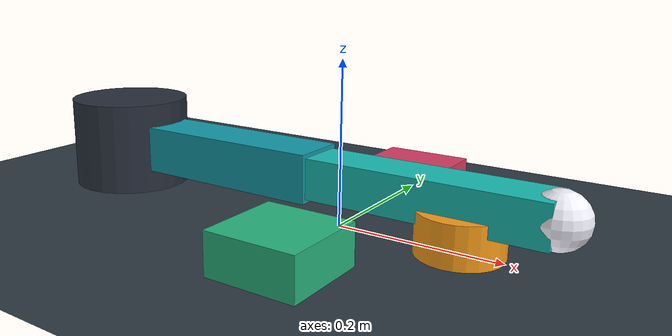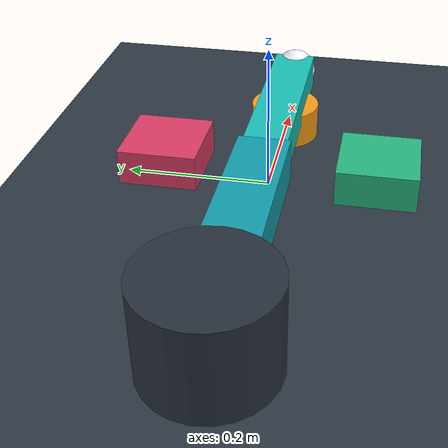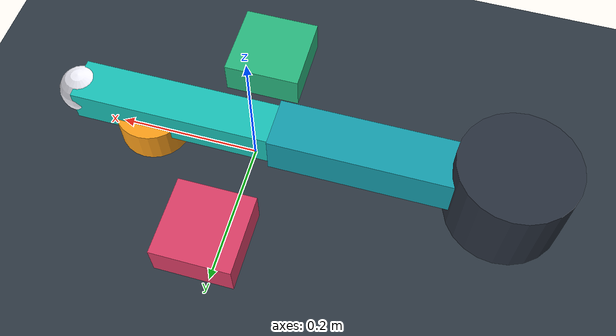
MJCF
<mujoco model="quality_inspection">
  <compiler angle="radian" autolimits="true"/>
  <option timestep="0.005" gravity="0 0 -9.81" integrator="implicitfast" solver="Newton" iterations="16" cone="pyramidal"/>
  <size njmax="96" nconmax="24"/>

  <default>
    <joint damping="1.2" armature="0.02" limited="true"/>
    <geom friction="0.9 0.01 0.0001" condim="3" contype="1" conaffinity="1"/>
    <motor ctrllimited="true" ctrlrange="-8 8"/>
  </default>

  <worldbody>
    <light name="key" pos="0 0 2" dir="0 0 -1"/>
    <geom name="inspection_table" type="plane" size="1.2 0.8 0.05" rgba="0.18 0.22 0.26 1"/>
    <geom name="station_a" type="box" pos="0.02 -0.15 0.025" size="0.055 0.055 0.025" rgba="0.16 0.72 0.50 1" contype="0" conaffinity="0"/>
    <geom name="station_b" type="cylinder" pos="0.15 0 0.025" size="0.050 0.025" rgba="0.98 0.62 0.10 1" contype="0" conaffinity="0"/>
    <geom name="station_c" type="box" pos="0.02 0.15 0.025" size="0.055 0.055 0.025" rgba="0.86 0.24 0.40 1" contype="0" conaffinity="0"/>

    <body name="base" pos="-0.35 0 0.06">
      <geom name="base_geom" type="cylinder" size="0.08 0.06" rgba="0.16 0.19 0.24 1" contype="0" conaffinity="0"/>
      <body name="link1" pos="0 0 0">
        <joint name="shoulder" type="hinge" axis="0 0 1" range="-2.7 2.7"/>
        <geom name="link1_geom" type="box" pos="0.16 0 0" size="0.16 0.035 0.03" rgba="0.08 0.62 0.68 1"/>
        <body name="link2" pos="0.32 0 0">
          <joint name="elbow" type="hinge" axis="0 0 1" range="-2.8 2.8"/>
          <geom name="link2_geom" type="box" pos="0.14 0 0" size="0.14 0.03 0.025" rgba="0.10 0.76 0.72 1"/>
          <body name="pusher" pos="0.28 0 0">
            <geom name="inspection_probe" type="sphere" size="0.032" rgba="0.96 0.96 1.0 1" contype="0" conaffinity="0"/>
          </body>
        </body>
      </body>
    </body>
  </worldbody>

  <actuator>
    <motor name="shoulder_motor" joint="shoulder" gear="1"/>
    <motor name="elbow_motor" joint="elbow" gear="1"/>
  </actuator>
</mujoco>
